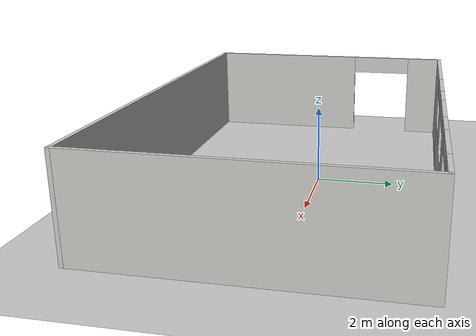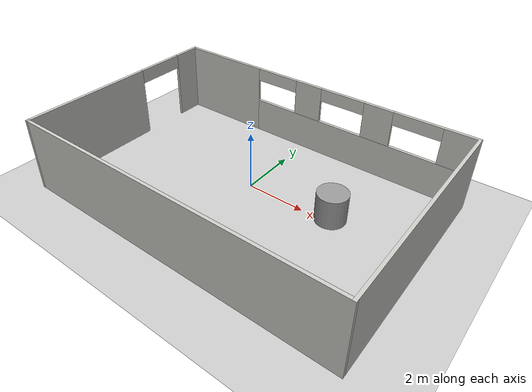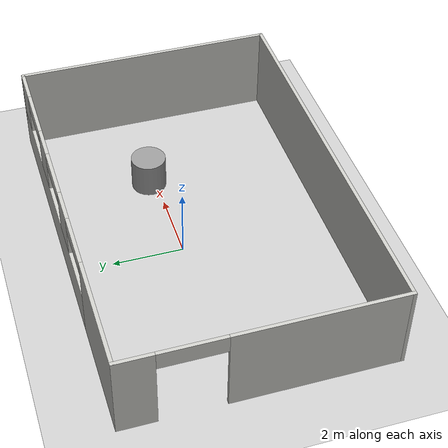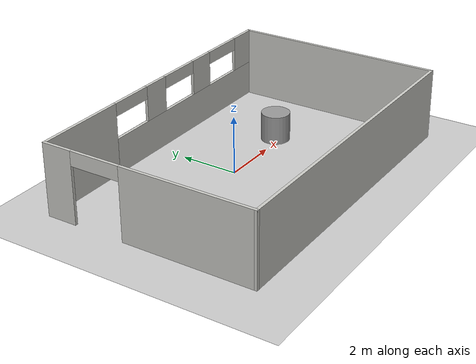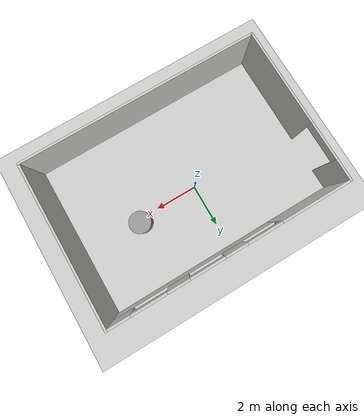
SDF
<sdf version="1.6">
 <world name="default">
  <light name="sun" type="directional">
   <pose>0 0 10 0 -0 0</pose>
   <diffuse>0.8 0.8 0.8 1</diffuse>
   <specular>0.2 0.2 0.2 1</specular>
   <attenuation>
    <range>1000</range>
    <constant>0.9</constant>
    <linear>0.01</linear>
    <quadratic>0.001</quadratic>
   </attenuation>
   <direction>-0.5 0.1 -0.9</direction>
  </light>
  <model name="ground_plane">
   <static>1</static>
   <link name="link">
    <collision name="collision">
     <geometry><plane><normal>0 0 1</normal><size>100 100</size></plane></geometry>
     <surface><friction><ode><mu>100</mu><mu2>50</mu2></ode></friction></surface>
    </collision>
    <visual name="visual">
     <cast_shadows>0</cast_shadows>
     <geometry><plane><normal>0 0 1</normal><size>100 100</size></plane></geometry>
     <material>
      <script><uri>file://media/materials/scripts/gazebo.material</uri><name>Gazebo/Grey</name></script>
     </material>
    </visual>
   </link>
  </model>
  <gravity>0 0 -9.8</gravity>
  <magnetic_field>6e-06 2.3e-05 -4.2e-05</magnetic_field>
  <atmosphere type="adiabatic"/>
  <physics name="default_physics" default="0" type="ode">
   <max_step_size>0.001</max_step_size>
   <real_time_factor>1</real_time_factor>
   <real_time_update_rate>1000</real_time_update_rate>
  </physics>
  <scene><ambient>0.4 0.4 0.4 1</ambient><background>0.7 0.7 0.7 1</background><shadows>1</shadows></scene>
  <spherical_coordinates>
   <surface_model>EARTH_WGS84</surface_model>
   <latitude_deg>0</latitude_deg>
   <longitude_deg>0</longitude_deg>
   <elevation>0</elevation>
   <heading_deg>0</heading_deg>
  </spherical_coordinates>
  <model name="lab">
   <pose>0.26253 -0.51301 0 0 -0 0</pose>
   <link name="Wall_23">
    <pose>0 3.675 0 0 -0 0</pose>
    <visual name="Wall_23_Visual_0">
     <pose>-3.95366 0 1.25 0 -0 0</pose>
     <geometry><box><size>3.29217 0.1 2.5</size></box></geometry>
     <material>
      <script><uri>file://media/materials/scripts/gazebo.material</uri><name>Gazebo/CeilingTiled</name></script>
      <ambient>0.760784 0.662745 0.627451 1</ambient>
     </material>
     <meta><layer>0</layer></meta>
    </visual>
    <collision name="Wall_23_Collision_0">
     <geometry><box><size>3.29217 0.1 2.5</size></box></geometry>
     <pose>-3.95366 0 1.25 0 -0 0</pose>
    </collision>
    <visual name="Wall_23_Visual_1">
     <pose>1.64609 0 0.625 0 -0 0</pose>
     <geometry><box><size>7.90733 0.1 1.25</size></box></geometry>
     <material>
      <script><uri>file://media/materials/scripts/gazebo.material</uri><name>Gazebo/CeilingTiled</name></script>
      <ambient>0.760784 0.662745 0.627451 1</ambient>
     </material>
     <meta><layer>0</layer></meta>
    </visual>
    <collision name="Wall_23_Collision_1">
     <geometry><box><size>7.90733 0.1 1.25</size></box></geometry>
     <pose>1.64609 0 0.625 0 -0 0</pose>
    </collision>
    <visual name="Wall_23_Visual_2">
     <pose>-0.203222 0 1.875 0 -0 0</pose>
     <geometry><box><size>1.00872 0.1 1.25</size></box></geometry>
     <material>
      <script><uri>file://media/materials/scripts/gazebo.material</uri><name>Gazebo/CeilingTiled</name></script>
      <ambient>0.760784 0.662745 0.627451 1</ambient>
     </material>
     <meta><layer>0</layer></meta>
    </visual>
    <collision name="Wall_23_Collision_2">
     <geometry><box><size>1.00872 0.1 1.25</size></box></geometry>
     <pose>-0.203222 0 1.875 0 -0 0</pose>
    </collision>
    <visual name="Wall_23_Visual_3">
     <pose>2.40557 0 1.875 0 -0 0</pose>
     <geometry><box><size>1.00886 0.1 1.25</size></box></geometry>
     <material>
      <script><uri>file://media/materials/scripts/gazebo.material</uri><name>Gazebo/CeilingTiled</name></script>
      <ambient>0.760784 0.662745 0.627451 1</ambient>
     </material>
     <meta><layer>0</layer></meta>
    </visual>
    <collision name="Wall_23_Collision_3">
     <geometry><box><size>1.00886 0.1 1.25</size></box></geometry>
     <pose>2.40557 0 1.875 0 -0 0</pose>
    </collision>
    <visual name="Wall_23_Visual_4">
     <pose>5.05488 0 1.875 0 -0 0</pose>
     <geometry><box><size>1.08975 0.1 1.25</size></box></geometry>
     <material>
      <script><uri>file://media/materials/scripts/gazebo.material</uri><name>Gazebo/CeilingTiled</name></script>
      <ambient>0.760784 0.662745 0.627451 1</ambient>
     </material>
     <meta><layer>0</layer></meta>
    </visual>
    <collision name="Wall_23_Collision_4">
     <geometry><box><size>1.08975 0.1 1.25</size></box></geometry>
     <pose>5.05488 0 1.875 0 -0 0</pose>
    </collision>
    <visual name="Wall_23_Visual_5">
     <pose>-1.50758 0 2.275 0 -0 0</pose>
     <geometry><box><size>1.6 0.1 0.45</size></box></geometry>
     <material>
      <script><uri>file://media/materials/scripts/gazebo.material</uri><name>Gazebo/CeilingTiled</name></script>
      <ambient>0.760784 0.662745 0.627451 1</ambient>
     </material>
     <meta><layer>0</layer></meta>
    </visual>
    <collision name="Wall_23_Collision_5">
     <geometry><box><size>1.6 0.1 0.45</size></box></geometry>
     <pose>-1.50758 0 2.275 0 -0 0</pose>
    </collision>
    <visual name="Wall_23_Visual_6">
     <pose>1.10114 0 2.275 0 -0 0</pose>
     <geometry><box><size>1.6 0.1 0.45</size></box></geometry>
     <material>
      <script><uri>file://media/materials/scripts/gazebo.material</uri><name>Gazebo/CeilingTiled</name></script>
      <ambient>0.760784 0.662745 0.627451 1</ambient>
     </material>
     <meta><layer>0</layer></meta>
    </visual>
    <collision name="Wall_23_Collision_6">
     <geometry><box><size>1.6 0.1 0.45</size></box></geometry>
     <pose>1.10114 0 2.275 0 -0 0</pose>
    </collision>
    <visual name="Wall_23_Visual_7">
     <pose>3.71 0 2.275 0 -0 0</pose>
     <geometry><box><size>1.6 0.1 0.45</size></box></geometry>
     <material>
      <script><uri>file://media/materials/scripts/gazebo.material</uri><name>Gazebo/CeilingTiled</name></script>
      <ambient>0.760784 0.662745 0.627451 1</ambient>
     </material>
     <meta><layer>0</layer></meta>
    </visual>
    <collision name="Wall_23_Collision_7">
     <geometry><box><size>1.6 0.1 0.45</size></box></geometry>
     <pose>3.71 0 2.275 0 -0 0</pose>
    </collision>
   </link>
   <link name="Wall_24">
    <collision name="Wall_24_Collision">
     <geometry><box><size>7.45 0.1 2.5</size></box></geometry>
     <pose>0 0 1.25 0 -0 0</pose>
    </collision>
    <visual name="Wall_24_Visual">
     <pose>0 0 1.25 0 -0 0</pose>
     <geometry><box><size>7.45 0.1 2.5</size></box></geometry>
     <material>
      <script><uri>file://media/materials/scripts/gazebo.material</uri><name>Gazebo/CeilingTiled</name></script>
      <ambient>0.760784 0.662745 0.627451 1</ambient>
     </material>
     <meta><layer>0</layer></meta>
    </visual>
    <pose>5.55 -0 0 0 -0 -1.5708</pose>
   </link>
   <link name="Wall_25">
    <collision name="Wall_25_Collision">
     <geometry><box><size>11.2005 0.1 2.5</size></box></geometry>
     <pose>0 0 1.25 0 -0 0</pose>
    </collision>
    <visual name="Wall_25_Visual">
     <pose>0 0 1.25 0 -0 0</pose>
     <geometry><box><size>11.2005 0.1 2.5</size></box></geometry>
     <material>
      <script><uri>file://media/materials/scripts/gazebo.material</uri><name>Gazebo/CeilingTiled</name></script>
      <ambient>0.760784 0.662745 0.627451 1</ambient>
     </material>
     <meta><layer>0</layer></meta>
    </visual>
    <pose>0 -3.675 0 0 -0 3.14159</pose>
   </link>
   <link name="Wall_26">
    <pose>-5.55 -0 0 0 -0 1.5708</pose>
    <visual name="Wall_26_Visual_0">
     <pose>-1.40863 0 1.25 0 -0 0</pose>
     <geometry><box><size>4.63275 0.1 2.5</size></box></geometry>
     <material>
      <script><uri>file://media/materials/scripts/gazebo.material</uri><name>Gazebo/CeilingTiled</name></script>
      <ambient>0.760784 0.662745 0.627451 1</ambient>
     </material>
     <meta><layer>0</layer></meta>
    </visual>
    <collision name="Wall_26_Collision_0">
     <geometry><box><size>4.63275 0.1 2.5</size></box></geometry>
     <pose>-1.40863 0 1.25 0 -0 0</pose>
    </collision>
    <visual name="Wall_26_Visual_1">
     <pose>3.19762 0 1.25 0 -0 0</pose>
     <geometry><box><size>1.05475 0.1 2.5</size></box></geometry>
     <material>
      <script><uri>file://media/materials/scripts/gazebo.material</uri><name>Gazebo/CeilingTiled</name></script>
      <ambient>0.760784 0.662745 0.627451 1</ambient>
     </material>
     <meta><layer>0</layer></meta>
    </visual>
    <collision name="Wall_26_Collision_1">
     <geometry><box><size>1.05475 0.1 2.5</size></box></geometry>
     <pose>3.19762 0 1.25 0 -0 0</pose>
    </collision>
    <visual name="Wall_26_Visual_2">
     <pose>1.789 0 2.25 0 -0 0</pose>
     <geometry><box><size>1.7625 0.1 0.5</size></box></geometry>
     <material>
      <script><uri>file://media/materials/scripts/gazebo.material</uri><name>Gazebo/CeilingTiled</name></script>
      <ambient>0.760784 0.662745 0.627451 1</ambient>
     </material>
     <meta><layer>0</layer></meta>
    </visual>
    <collision name="Wall_26_Collision_2">
     <geometry><box><size>1.7625 0.1 0.5</size></box></geometry>
     <pose>1.789 0 2.25 0 -0 0</pose>
    </collision>
   </link>
   <static>1</static>
  </model>
  <model name="unit_cylinder">
   <pose>2.90203 0.1969 0.499998 3e-06 -3e-06 0</pose>
   <link name="link">
    <inertial>
     <mass>1</mass>
     <inertia><ixx>0.145833</ixx><ixy>0</ixy><ixz>0</ixz><iyy>0.145833</iyy><iyz>0</iyz><izz>0.125</izz></inertia>
    </inertial>
    <collision name="collision">
     <geometry><cylinder><radius>0.5</radius><length>1</length></cylinder></geometry>
    </collision>
    <visual name="visual">
     <geometry><cylinder><radius>0.5</radius><length>1</length></cylinder></geometry>
     <material>
      <script><name>Gazebo/Grey</name><uri>file://media/materials/scripts/gazebo.material</uri></script>
     </material>
    </visual>
   </link>
  </model>
 </world>
</sdf>
